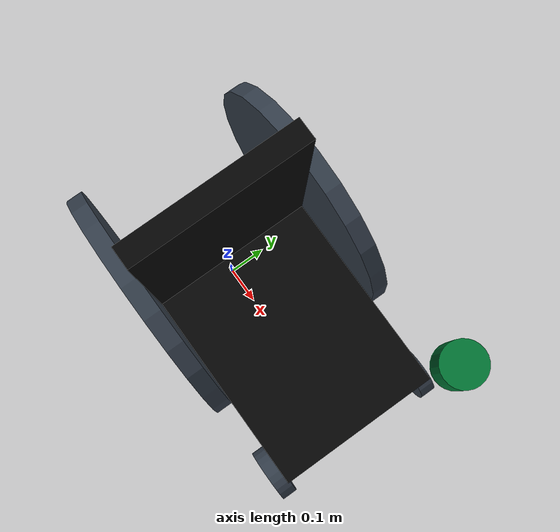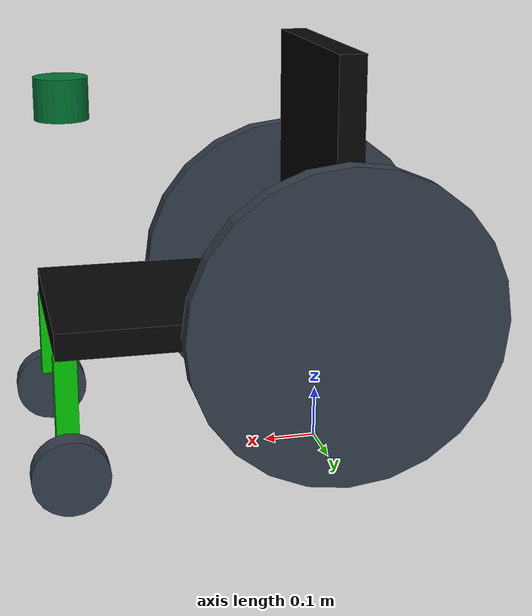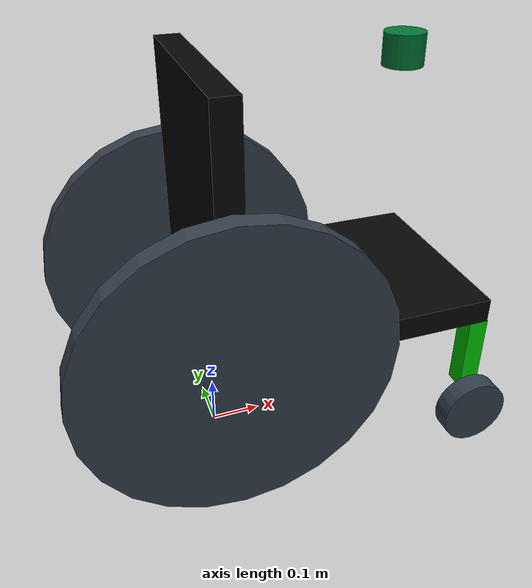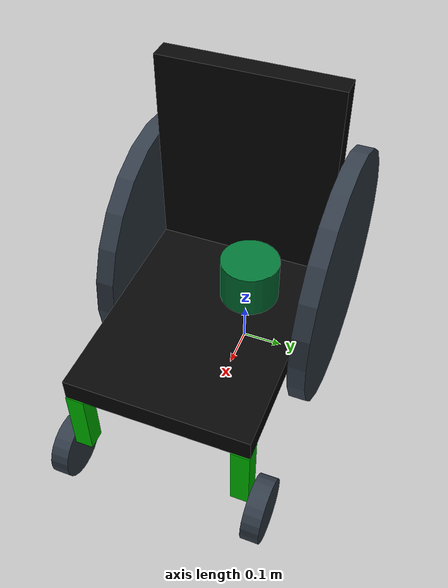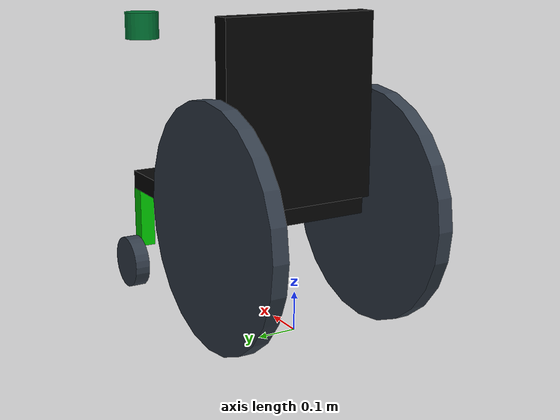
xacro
<?xml version="1.0"?>

<robot name="wheelchair_hardware" xmlns:xacro="http://www.ros.org/wiki/xacro">
  <material name="frame_black"><color rgba="0.02 0.02 0.02 1.0"/></material>
  <material name="wheel_blue"><color rgba="0.20 0.24 0.29 1.0"/></material>
  <material name="support_green"><color rgba="0.0 0.8 0.0 1.0"/></material>
  <material name="lidar_green"><color rgba="0.0 0.45 0.20 1.0"/></material>

  <link name="base_footprint"/>

  <joint name="base_footprint_joint" type="fixed">
    <parent link="base_footprint"/>
    <child link="base_link"/>
    <origin xyz="0.260 0 0" rpy="0 0 0"/>
  </joint>

  <link name="base_link">
    <visual name="chassis_visual">
      <origin xyz="0 0 0.300" rpy="0 0 0"/>
      <geometry><box size="0.520 0.400 0.050"/></geometry>
      <material name="frame_black"/>
    </visual>
    <collision name="chassis_collision">
      <origin xyz="0 0 0.300" rpy="0 0 0"/>
      <geometry><box size="0.520 0.400 0.050"/></geometry>
    </collision>
  </link>

  <link name="link_back_frame">
    <visual name="back_frame_visual">
      <origin xyz="0 0 0" rpy="0 1.5707 0"/>
      <geometry><box size="0.460 0.400 0.050"/></geometry>
      <material name="frame_black"/>
    </visual>
    <collision name="back_frame_collision">
      <origin xyz="0 0 0" rpy="0 1.5707 0"/>
      <geometry><box size="0.460 0.400 0.050"/></geometry>
    </collision>
  </link>

  <joint name="joint_back_frame" type="fixed">
    <parent link="base_link"/>
    <child link="link_back_frame"/>
    <origin xyz="-0.2625 0 0.555" rpy="0 0 0"/>
  </joint>

  <link name="link_left_wheel">
    <visual name="left_wheel_visual">
      <origin xyz="0 0 0" rpy="0 1.5707 1.5707"/>
      <geometry><cylinder length="0.040" radius="0.300"/></geometry>
      <material name="wheel_blue"/>
    </visual>
    <collision name="left_wheel_collision">
      <origin xyz="0 0 0" rpy="0 1.5707 1.5707"/>
      <geometry><cylinder length="0.040" radius="0.300"/></geometry>
    </collision>
  </link>

  <joint name="joint_left_wheel" type="continuous">
    <parent link="base_link"/>
    <child link="link_left_wheel"/>
    <origin xyz="-0.260 0.220 0.300" rpy="0 0 0"/>
    <axis xyz="0 1 0"/>
    <limit effort="10000" velocity="1000"/>
    <joint_properties damping="1.0" friction="1.0"/>
  </joint>

  <link name="link_right_wheel">
    <visual name="right_wheel_visual">
      <origin xyz="0 0 0" rpy="0 1.5707 1.5707"/>
      <geometry><cylinder length="0.040" radius="0.300"/></geometry>
      <material name="wheel_blue"/>
    </visual>
    <collision name="right_wheel_collision">
      <origin xyz="0 0 0" rpy="0 1.5707 1.5707"/>
      <geometry><cylinder length="0.040" radius="0.300"/></geometry>
    </collision>
  </link>

  <joint name="joint_right_wheel" type="continuous">
    <parent link="base_link"/>
    <child link="link_right_wheel"/>
    <origin xyz="-0.260 -0.220 0.300" rpy="0 0 0"/>
    <axis xyz="0 1 0"/>
    <limit effort="10000" velocity="1000"/>
    <joint_properties damping="1.0" friction="1.0"/>
  </joint>

  <link name="link_support_left_bar">
    <visual name="support_left_bar_visual">
      <origin xyz="0 0 0" rpy="0 -1.5707 0"/>
      <geometry><box size="0.160 0.040 0.040"/></geometry>
      <material name="support_green"/>
    </visual>
    <collision name="support_left_bar_collision">
      <origin xyz="0 0 0" rpy="0 -1.5707 0"/>
      <geometry><box size="0.160 0.040 0.040"/></geometry>
    </collision>
  </link>

  <joint name="joint_support_left_bar" type="fixed">
    <parent link="base_link"/>
    <child link="link_support_left_bar"/>
    <origin xyz="0.242 0.180 0.195" rpy="0 0 0"/>
  </joint>

  <link name="link_support_right_bar">
    <visual name="support_right_bar_visual">
      <origin xyz="0 0 0" rpy="0 -1.5707 0"/>
      <geometry><box size="0.160 0.040 0.040"/></geometry>
      <material name="support_green"/>
    </visual>
    <collision name="support_right_bar_collision">
      <origin xyz="0 0 0" rpy="0 -1.5707 0"/>
      <geometry><box size="0.160 0.040 0.040"/></geometry>
    </collision>
  </link>

  <joint name="joint_support_right_bar" type="fixed">
    <parent link="base_link"/>
    <child link="link_support_right_bar"/>
    <origin xyz="0.242 -0.180 0.195" rpy="0 0 0"/>
  </joint>

  <link name="link_support_left_wheel">
    <visual name="support_left_wheel_visual">
      <origin xyz="0 0 0" rpy="0 1.5707 1.5707"/>
      <geometry><cylinder length="0.040" radius="0.070"/></geometry>
      <material name="wheel_blue"/>
    </visual>
    <collision name="support_left_wheel_collision">
      <origin xyz="0 0 0" rpy="0 1.5707 1.5707"/>
      <geometry><cylinder length="0.040" radius="0.070"/></geometry>
    </collision>
  </link>

  <joint name="joint_support_left_wheel" type="continuous">
    <parent link="base_link"/>
    <child link="link_support_left_wheel"/>
    <origin xyz="0.242 0.220 0.070" rpy="0 0 0"/>
    <axis xyz="0 1 0"/>
    <limit effort="10000" velocity="1000"/>
    <joint_properties damping="1.0" friction="1.0"/>
  </joint>

  <link name="link_support_right_wheel">
    <visual name="support_right_wheel_visual">
      <origin xyz="0 0 0" rpy="0 1.5707 1.5707"/>
      <geometry><cylinder length="0.040" radius="0.070"/></geometry>
      <material name="wheel_blue"/>
    </visual>
    <collision name="support_right_wheel_collision">
      <origin xyz="0 0 0" rpy="0 1.5707 1.5707"/>
      <geometry><cylinder length="0.040" radius="0.070"/></geometry>
    </collision>
  </link>

  <joint name="joint_support_right_wheel" type="continuous">
    <parent link="base_link"/>
    <child link="link_support_right_wheel"/>
    <origin xyz="0.242 -0.220 0.070" rpy="0 0 0"/>
    <axis xyz="0 1 0"/>
    <limit effort="10000" velocity="1000"/>
    <joint_properties damping="1.0" friction="1.0"/>
  </joint>

  <link name="lidar_link">
    <visual name="livox_visual">
      <geometry><cylinder radius="0.045" length="0.070"/></geometry>
      <material name="lidar_green"/>
    </visual>
    <collision name="livox_collision">
      <geometry><cylinder radius="0.045" length="0.070"/></geometry>
    </collision>
  </link>

  <joint name="lidar_joint" type="fixed">
    <parent link="base_link"/>
    <child link="lidar_link"/>
    <origin xyz="0.229 0.17671 0.725" rpy="0 0 0"/>
  </joint>

  <link name="imu_link"/>

  <joint name="imu_joint" type="fixed">
    <parent link="base_link"/>
    <child link="imu_link"/>
    <origin xyz="0.240 0.200 0.68088" rpy="0 0 0"/>
  </joint>

  <link name="body"/>

  <joint name="fast_lio_body_joint" type="fixed">
    <parent link="imu_link"/>
    <child link="body"/>
    <origin xyz="0 0 0" rpy="0 0 0"/>
  </joint>
</robot>
